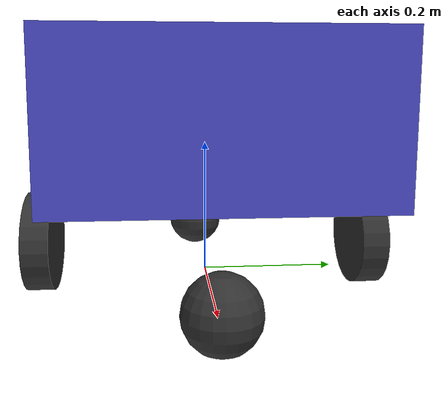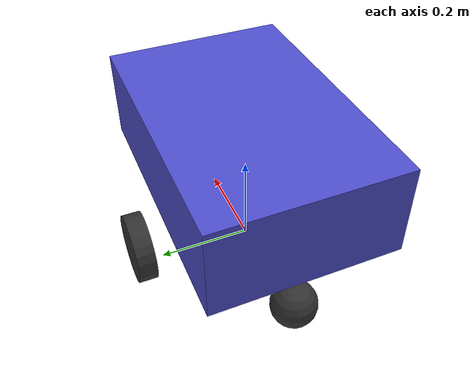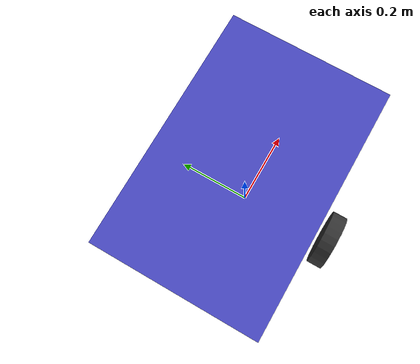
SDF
<?xml version="1.0" ?>
<!-- AMR 机器人模型 — 差分驱动 + LiDAR + IMU + Camera
     Gazebo Harmonic SDF 格式，传感器通过 ros_gz_bridge 桥接到 ROS2 topic -->
<sdf version="1.9">
  <model name="amr">
    <pose>0 0 0.1 0 0 0</pose>

    <!-- ================================================================
         底盘（body）
         ================================================================ -->
    <link name="chassis">
      <pose>0 0 0.15 0 0 0</pose>
      <inertial>
        <mass>20.0</mass>
        <inertia>
          <ixx>0.5</ixx><iyy>0.5</iyy><izz>0.8</izz>
          <ixy>0</ixy><ixz>0</ixz><iyz>0</iyz>
        </inertia>
      </inertial>
      <collision name="chassis_collision">
        <geometry><box><size>0.6 0.4 0.2</size></box></geometry>
      </collision>
      <visual name="chassis_visual">
        <geometry><box><size>0.6 0.4 0.2</size></box></geometry>
        <material>
          <ambient>0.2 0.2 0.2</ambient>
          <diffuse>0.3 0.3 0.8</diffuse>
        </material>
      </visual>

      <sensor name="lidar" type="gpu_lidar">
        <!-- z=1.00：地面环推到 ~1.77m。车接近墙(<1.77m)时墙比地面环近 → 护栏检测墙停。
             地面环(z=0 点)在 0° 遮挡墙是 WSL2 gpu_lidar beam 俯角的固有 bug，
             抬高 lidar 让地面环推远，车接近墙时墙回波先于地面环被检测。 -->
        <pose>0.25 0 1.00 0 0 0</pose>
        <always_on>true</always_on>
        <update_rate>10</update_rate>
        <topic>lidar</topic>
        <ray>
          <scan>
            <horizontal>
              <samples>360</samples>
              <resolution>1</resolution>
              <min_angle>-3.14159</min_angle>
              <max_angle>3.14159</max_angle>
            </horizontal>
            <!-- vertical 显式 0°：否则 gpu_lidar beam 向下倾斜打到地面，
                 前方产生 ~0.5-0.7m 地面回波，被护栏当成障碍 → 车走不动。 -->
            <vertical>
              <samples>1</samples>
              <resolution>1</resolution>
              <min_angle>0</min_angle>
              <max_angle>0</max_angle>
            </vertical>
          </scan>
          <range>
            <min>0.1</min>
            <max>10.0</max>
            <resolution>0.01</resolution>
          </range>
        </ray>
      </sensor>

      <sensor name="imu" type="imu">
        <always_on>true</always_on>
        <update_rate>100</update_rate>
        <topic>imu</topic>
      </sensor>

      <!-- Camera 暂时禁用（2026-08-02）：
           在 WSL2 d3d12 下，相机 640x480 图像读回（Ogre2RenderTarget::Copy）
           触发 gz-sim 服务器 SIGSEGV。视觉暂由 /scan + /points 提供。
           修复渲染读回后再恢复。 -->
    </link>

    <!-- ================================================================
         左驱动轮
         ================================================================ -->
    <link name="left_wheel">
      <pose>0 0.25 -0.05 1.5708 0 0</pose>  <!-- roll 90°: cylinder 轴 Z→Y，对齐 joint 转轴 -->
      <inertial>
        <mass>1.0</mass>
        <inertia><ixx>0.01</ixx><iyy>0.01</iyy><izz>0.01</izz></inertia>
      </inertial>
      <collision name="collision">
        <geometry><cylinder><radius>0.075</radius><length>0.04</length></cylinder></geometry>
      </collision>
      <visual name="visual">
        <geometry><cylinder><radius>0.075</radius><length>0.04</length></cylinder></geometry>
        <material><ambient>0.1 0.1 0.1</ambient><diffuse>0.2 0.2 0.2</diffuse></material>
      </visual>
    </link>

    <link name="right_wheel">
      <pose>0 -0.25 -0.05 1.5708 0 0</pose>  <!-- roll 90°: cylinder 轴 Z→Y，对齐 joint 转轴 -->
      <inertial>
        <mass>1.0</mass>
        <inertia><ixx>0.01</ixx><iyy>0.01</iyy><izz>0.01</izz></inertia>
      </inertial>
      <collision name="collision">
        <geometry><cylinder><radius>0.075</radius><length>0.04</length></cylinder></geometry>
      </collision>
      <visual name="visual">
        <geometry><cylinder><radius>0.075</radius><length>0.04</length></cylinder></geometry>
        <material><ambient>0.1 0.1 0.1</ambient><diffuse>0.2 0.2 0.2</diffuse></material>
      </visual>
    </link>

    <!-- 差速驱动 joint：pose 定位到轮轴（chassis 坐标系），转轴才过轮心。
         缺 pose = 转轴过 chassis 中心 → 轮子被卡转不动。 -->
    <joint name="left_wheel_joint" type="revolute">
      <parent>chassis</parent>
      <child>left_wheel</child>
      <pose>0 0.25 -0.20 0 0 0</pose>
      <axis><xyz>0 1 0</xyz></axis>
    </joint>

    <joint name="right_wheel_joint" type="revolute">
      <parent>chassis</parent>
      <child>right_wheel</child>
      <pose>0 -0.25 -0.20 0 0 0</pose>
      <axis><xyz>0 1 0</xyz></axis>
    </joint>

    <!-- 后支撑球（2026-08-07）：只有左右驱动轮时 2 轮差速车前后无支撑，
         物理上绕 y 轴倾倒(pitch ~16°)，lidar 朝向异常 → 渲染失效。
         加后支撑球(球底贴地 z=0)形成 3 点支撑，车前后平稳。 -->
    <link name="rear_support">
      <!-- z=-0.075：车落地后 chassis 中心 z≈0.125，球底贴地(0.125-0.075-0.05=0) -->
      <pose>-0.25 0 -0.075 0 0 0</pose>
      <inertial>
        <mass>0.5</mass>
        <inertia><ixx>0.001</ixx><iyy>0.001</iyy><izz>0.001</izz></inertia>
      </inertial>
      <collision name="collision">
        <geometry><sphere><radius>0.05</radius></sphere></geometry>
      </collision>
      <visual name="visual">
        <geometry><sphere><radius>0.05</radius></sphere></geometry>
        <material><ambient>0.1 0.1 0.1</ambient><diffuse>0.2 0.2 0.2</diffuse></material>
      </visual>
    </link>
    <joint name="rear_support_joint" type="fixed">
      <parent>chassis</parent>
      <child>rear_support</child>
    </joint>

    <!-- 前支撑球（对称 rear_support）：2 轮差速车前后无支撑，
         只加后支撑车仍前倾(pitch -16°)，前后各一球形成 4 点稳定支撑。 -->
    <link name="front_support">
      <pose>0.25 0 -0.075 0 0 0</pose>
      <inertial>
        <mass>0.5</mass>
        <inertia><ixx>0.001</ixx><iyy>0.001</iyy><izz>0.001</izz></inertia>
      </inertial>
      <collision name="collision">
        <geometry><sphere><radius>0.05</radius></sphere></geometry>
      </collision>
      <visual name="visual">
        <geometry><sphere><radius>0.05</radius></sphere></geometry>
        <material><ambient>0.1 0.1 0.1</ambient><diffuse>0.2 0.2 0.2</diffuse></material>
      </visual>
    </link>
    <joint name="front_support_joint" type="fixed">
      <parent>chassis</parent>
      <child>front_support</child>
    </joint>

    <!-- ================================================================
         差速驱动插件 — 接收 /cmd_vel (geometry_msgs/Twist)
         ================================================================ -->
    <plugin
      filename="gz-sim-diff-drive-system"
      name="gz::sim::systems::DiffDrive">
      <left_joint>left_wheel_joint</left_joint>
      <right_joint>right_wheel_joint</right_joint>
      <wheel_separation>0.5</wheel_separation>
      <wheel_radius>0.075</wheel_radius>
      <topic>/cmd_vel</topic>
      <odom_topic>odom</odom_topic>
      <tf_topic>tf</tf_topic>
      <frame_id>amr/odom</frame_id>
      <child_frame_id>amr/chassis</child_frame_id>
      <odom_publish_frequency>30</odom_publish_frequency>
    </plugin>

    <!-- ================================================================
         关节状态发布插件 — 发布 /joint_states
         ================================================================ -->
    <plugin
      filename="gz-sim-joint-state-publisher-system"
      name="gz::sim::systems::JointStatePublisher">
      <joint_name>left_wheel_joint</joint_name>
      <joint_name>right_wheel_joint</joint_name>
    </plugin>
  </model>
</sdf>
